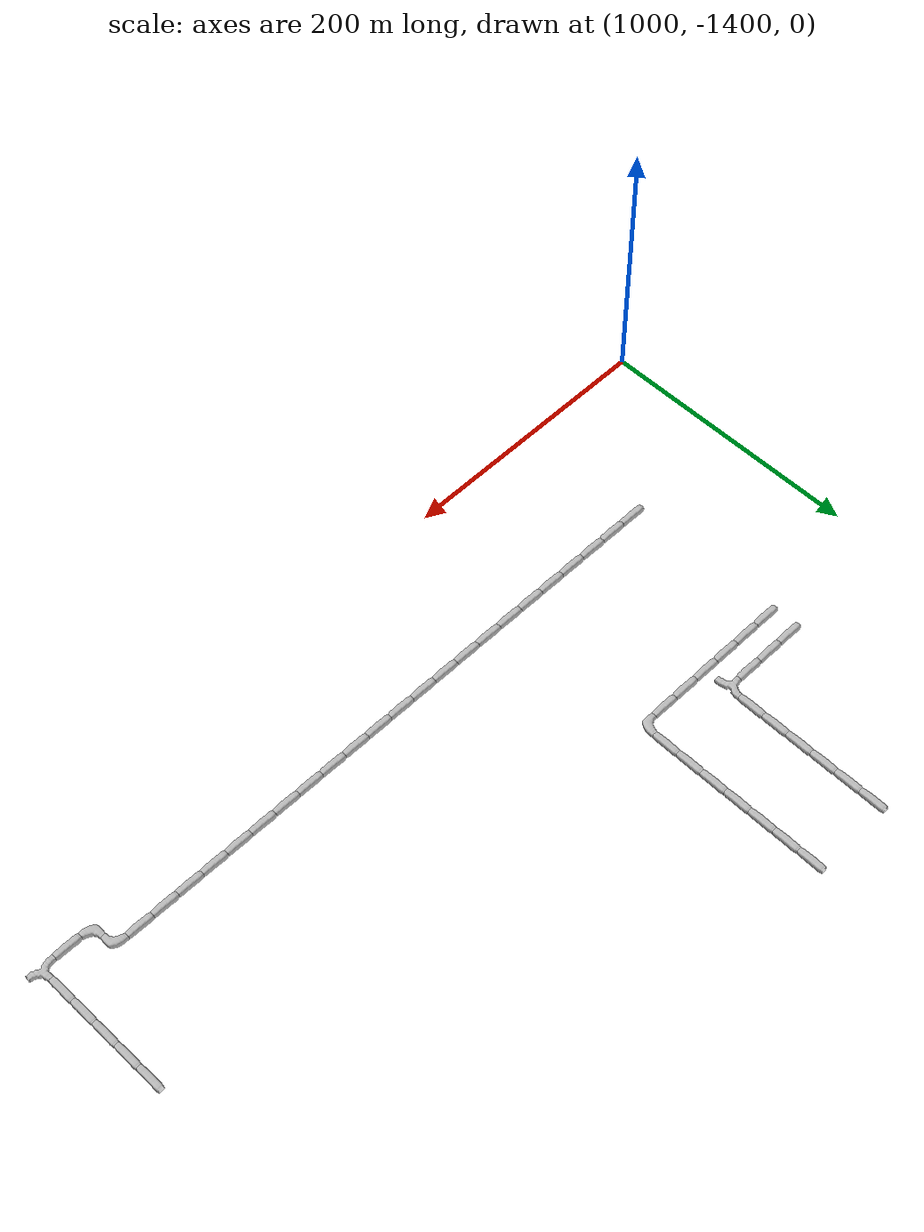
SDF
<sdf version="1.6">
 <world name="cave_32000_2">
  <include>
   <static>true</static>
   <name>cave_80_-61</name>
   <pose>1600 -1220 0 0 0 0.0</pose>
   <uri>model://cave_straight_20m</uri>
  </include>
  <include>
   <static>true</static>
   <name>cave_80_-62</name>
   <pose>1600 -1240 0 0 0 0.0</pose>
   <uri>model://cave_straight_20m</uri>
  </include>
  <include>
   <static>true</static>
   <name>cave_80_-63</name>
   <pose>1600 -1260 0 0 0 0.0</pose>
   <uri>model://cave_straight_20m</uri>
  </include>
  <include>
   <static>true</static>
   <name>cave_80_-64</name>
   <pose>1600 -1280 0 0 0 0.0</pose>
   <uri>model://cave_straight_20m</uri>
  </include>
  <include>
   <static>true</static>
   <name>cave_80_-65</name>
   <pose>1600 -1300 0 0 0 0.0</pose>
   <uri>model://cave_straight_20m</uri>
  </include>
  <include>
   <static>true</static>
   <name>cave_80_-66</name>
   <pose>1600 -1320 0 0 0 0.0</pose>
   <uri>model://cave_3way_20m</uri>
  </include>
  <include>
   <static>true</static>
   <name>cave_79_-66</name>
   <pose>1580 -1320 0 0 0 1.5707963267948966</pose>
   <uri>model://cave_straight_20m</uri>
  </include>
  <include>
   <static>true</static>
   <name>cave_78_-66</name>
   <pose>1560 -1320 0 0 0 0.0</pose>
   <uri>model://cave_L_20m</uri>
  </include>
  <include>
   <static>true</static>
   <name>cave_78_-65</name>
   <pose>1560 -1300 0 0 0 3.141592653589793</pose>
   <uri>model://cave_L_20m</uri>
  </include>
  <include>
   <static>true</static>
   <name>cave_77_-65</name>
   <pose>1540 -1300 0 0 0 1.5707963267948966</pose>
   <uri>model://cave_straight_20m</uri>
  </include>
  <include>
   <static>true</static>
   <name>cave_76_-65</name>
   <pose>1520 -1300 0 0 0 1.5707963267948966</pose>
   <uri>model://cave_straight_20m</uri>
  </include>
  <include>
   <static>true</static>
   <name>cave_75_-65</name>
   <pose>1500 -1300 0 0 0 1.5707963267948966</pose>
   <uri>model://cave_straight_20m</uri>
  </include>
  <include>
   <static>true</static>
   <name>cave_74_-65</name>
   <pose>1480 -1300 0 0 0 1.5707963267948966</pose>
   <uri>model://cave_straight_20m</uri>
  </include>
  <include>
   <static>true</static>
   <name>cave_73_-65</name>
   <pose>1460 -1300 0 0 0 1.5707963267948966</pose>
   <uri>model://cave_straight_20m</uri>
  </include>
  <include>
   <static>true</static>
   <name>cave_72_-65</name>
   <pose>1440 -1300 0 0 0 1.5707963267948966</pose>
   <uri>model://cave_straight_20m</uri>
  </include>
  <include>
   <static>true</static>
   <name>cave_71_-65</name>
   <pose>1420 -1300 0 0 0 1.5707963267948966</pose>
   <uri>model://cave_straight_20m</uri>
  </include>
  <include>
   <static>true</static>
   <name>cave_70_-65</name>
   <pose>1400 -1300 0 0 0 1.5707963267948966</pose>
   <uri>model://cave_straight_20m</uri>
  </include>
  <include>
   <static>true</static>
   <name>cave_69_-65</name>
   <pose>1380 -1300 0 0 0 1.5707963267948966</pose>
   <uri>model://cave_straight_20m</uri>
  </include>
  <include>
   <static>true</static>
   <name>cave_68_-65</name>
   <pose>1360 -1300 0 0 0 1.5707963267948966</pose>
   <uri>model://cave_straight_20m</uri>
  </include>
  <include>
   <static>true</static>
   <name>cave_67_-65</name>
   <pose>1340 -1300 0 0 0 1.5707963267948966</pose>
   <uri>model://cave_straight_20m</uri>
  </include>
  <include>
   <static>true</static>
   <name>cave_66_-65</name>
   <pose>1320 -1300 0 0 0 1.5707963267948966</pose>
   <uri>model://cave_straight_20m</uri>
  </include>
  <include>
   <static>true</static>
   <name>cave_65_-65</name>
   <pose>1300 -1300 0 0 0 1.5707963267948966</pose>
   <uri>model://cave_straight_20m</uri>
  </include>
  <include>
   <static>true</static>
   <name>cave_64_-65</name>
   <pose>1280 -1300 0 0 0 1.5707963267948966</pose>
   <uri>model://cave_straight_20m</uri>
  </include>
  <include>
   <static>true</static>
   <name>cave_63_-65</name>
   <pose>1260 -1300 0 0 0 1.5707963267948966</pose>
   <uri>model://cave_straight_20m</uri>
  </include>
  <include>
   <static>true</static>
   <name>cave_62_-65</name>
   <pose>1240 -1300 0 0 0 1.5707963267948966</pose>
   <uri>model://cave_straight_20m</uri>
  </include>
  <include>
   <static>true</static>
   <name>cave_61_-65</name>
   <pose>1220 -1300 0 0 0 1.5707963267948966</pose>
   <uri>model://cave_straight_20m</uri>
  </include>
  <include>
   <static>true</static>
   <name>cave_60_-65</name>
   <pose>1200 -1300 0 0 0 1.5707963267948966</pose>
   <uri>model://cave_straight_20m</uri>
  </include>
  <include>
   <static>true</static>
   <name>cave_59_-65</name>
   <pose>1180 -1300 0 0 0 1.5707963267948966</pose>
   <uri>model://cave_straight_20m</uri>
  </include>
  <include>
   <static>true</static>
   <name>cave_58_-65</name>
   <pose>1160 -1300 0 0 0 1.5707963267948966</pose>
   <uri>model://cave_straight_20m</uri>
  </include>
  <include>
   <static>true</static>
   <name>cave_57_-65</name>
   <pose>1140 -1300 0 0 0 1.5707963267948966</pose>
   <uri>model://cave_straight_20m</uri>
  </include>
  <include>
   <static>true</static>
   <name>cave_56_-65</name>
   <pose>1120 -1300 0 0 0 1.5707963267948966</pose>
   <uri>model://cave_straight_20m</uri>
  </include>
  <include>
   <static>true</static>
   <name>cave_55_-65</name>
   <pose>1100 -1300 0 0 0 1.5707963267948966</pose>
   <uri>model://cave_straight_20m</uri>
  </include>
  <include>
   <static>true</static>
   <name>cave_58_-52</name>
   <pose>1160 -1040 0 0 0 0.0</pose>
   <uri>model://cave_straight_20m</uri>
  </include>
  <include>
   <static>true</static>
   <name>cave_58_-53</name>
   <pose>1160 -1060 0 0 0 0.0</pose>
   <uri>model://cave_straight_20m</uri>
  </include>
  <include>
   <static>true</static>
   <name>cave_58_-54</name>
   <pose>1160 -1080 0 0 0 0.0</pose>
   <uri>model://cave_straight_20m</uri>
  </include>
  <include>
   <static>true</static>
   <name>cave_58_-55</name>
   <pose>1160 -1100 0 0 0 0.0</pose>
   <uri>model://cave_straight_20m</uri>
  </include>
  <include>
   <static>true</static>
   <name>cave_58_-56</name>
   <pose>1160 -1120 0 0 0 0.0</pose>
   <uri>model://cave_straight_20m</uri>
  </include>
  <include>
   <static>true</static>
   <name>cave_58_-57</name>
   <pose>1160 -1140 0 0 0 0.0</pose>
   <uri>model://cave_straight_20m</uri>
  </include>
  <include>
   <static>true</static>
   <name>cave_58_-58</name>
   <pose>1160 -1160 0 0 0 1.5707963267948966</pose>
   <uri>model://cave_3way_20m</uri>
  </include>
  <include>
   <static>true</static>
   <name>cave_57_-58</name>
   <pose>1140 -1160 0 0 0 1.5707963267948966</pose>
   <uri>model://cave_straight_20m</uri>
  </include>
  <include>
   <static>true</static>
   <name>cave_56_-58</name>
   <pose>1120 -1160 0 0 0 1.5707963267948966</pose>
   <uri>model://cave_straight_20m</uri>
  </include>
  <include>
   <static>true</static>
   <name>cave_55_-58</name>
   <pose>1100 -1160 0 0 0 1.5707963267948966</pose>
   <uri>model://cave_straight_20m</uri>
  </include>
  <include>
   <static>true</static>
   <name>cave_55_-59</name>
   <pose>1100 -1180 0 0 0 1.5707963267948966</pose>
   <uri>model://cave_straight_20m</uri>
  </include>
  <include>
   <static>true</static>
   <name>cave_56_-59</name>
   <pose>1120 -1180 0 0 0 1.5707963267948966</pose>
   <uri>model://cave_straight_20m</uri>
  </include>
  <include>
   <static>true</static>
   <name>cave_57_-59</name>
   <pose>1140 -1180 0 0 0 1.5707963267948966</pose>
   <uri>model://cave_straight_20m</uri>
  </include>
  <include>
   <static>true</static>
   <name>cave_58_-59</name>
   <pose>1160 -1180 0 0 0 1.5707963267948966</pose>
   <uri>model://cave_straight_20m</uri>
  </include>
  <include>
   <static>true</static>
   <name>cave_59_-59</name>
   <pose>1180 -1180 0 0 0 1.5707963267948966</pose>
   <uri>model://cave_straight_20m</uri>
  </include>
  <include>
   <static>true</static>
   <name>cave_60_-59</name>
   <pose>1200 -1180 0 0 0 1.5707963267948966</pose>
   <uri>model://cave_straight_20m</uri>
  </include>
  <include>
   <static>true</static>
   <name>cave_61_-59</name>
   <pose>1220 -1180 0 0 0 1.5707963267948966</pose>
   <uri>model://cave_L_20m</uri>
  </include>
  <include>
   <static>true</static>
   <name>cave_61_-58</name>
   <pose>1220 -1160 0 0 0 0.0</pose>
   <uri>model://cave_straight_20m</uri>
  </include>
  <include>
   <static>true</static>
   <name>cave_61_-57</name>
   <pose>1220 -1140 0 0 0 0.0</pose>
   <uri>model://cave_straight_20m</uri>
  </include>
  <include>
   <static>true</static>
   <name>cave_61_-56</name>
   <pose>1220 -1120 0 0 0 0.0</pose>
   <uri>model://cave_straight_20m</uri>
  </include>
  <include>
   <static>true</static>
   <name>cave_61_-55</name>
   <pose>1220 -1100 0 0 0 0.0</pose>
   <uri>model://cave_straight_20m</uri>
  </include>
  <include>
   <static>true</static>
   <name>cave_61_-54</name>
   <pose>1220 -1080 0 0 0 0.0</pose>
   <uri>model://cave_straight_20m</uri>
  </include>
  <include>
   <static>true</static>
   <name>cave_61_-53</name>
   <pose>1220 -1060 0 0 0 0.0</pose>
   <uri>model://cave_straight_20m</uri>
  </include>
  <include>
   <static>true</static>
   <name>cave_61_-52</name>
   <pose>1220 -1040 0 0 0 0.0</pose>
   <uri>model://cave_straight_20m</uri>
  </include>
 </world>
</sdf>
